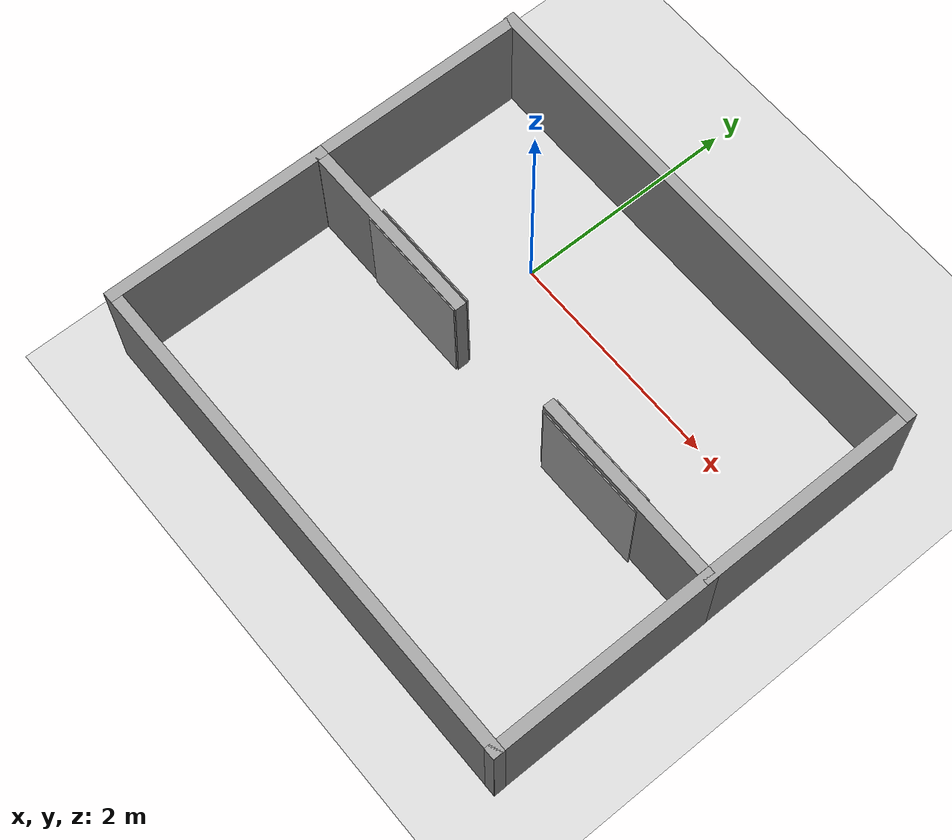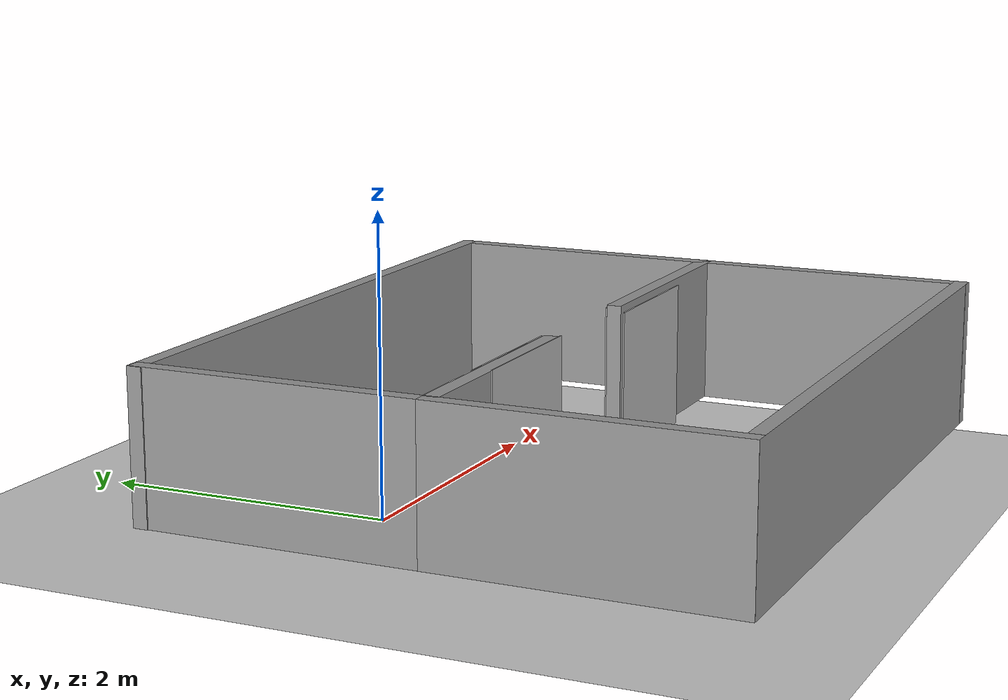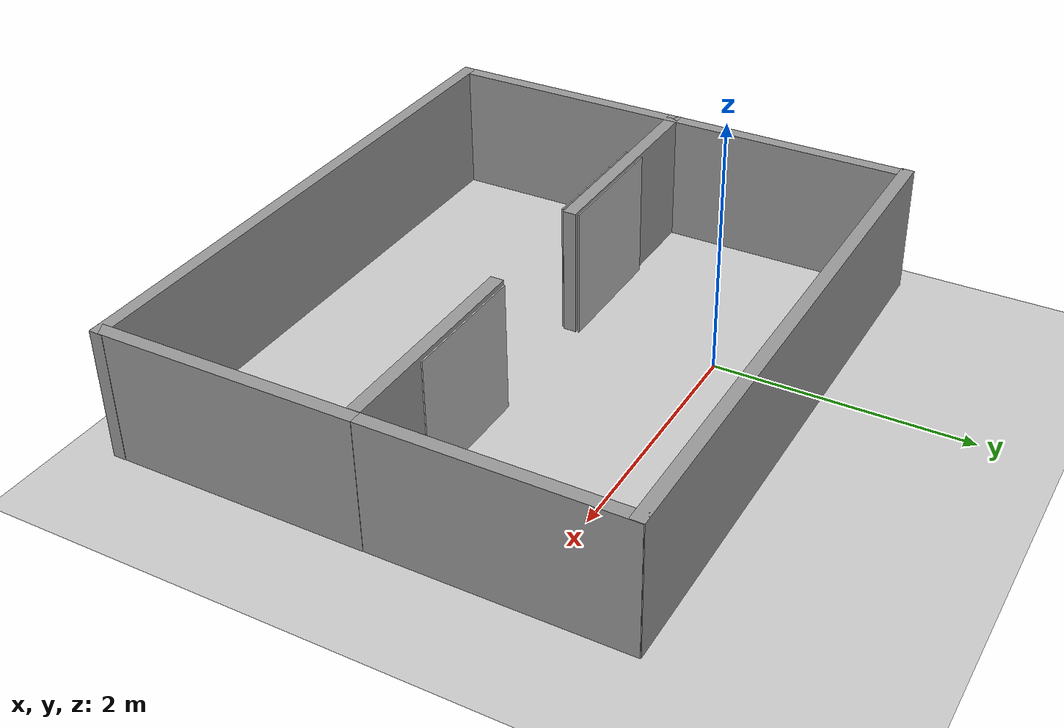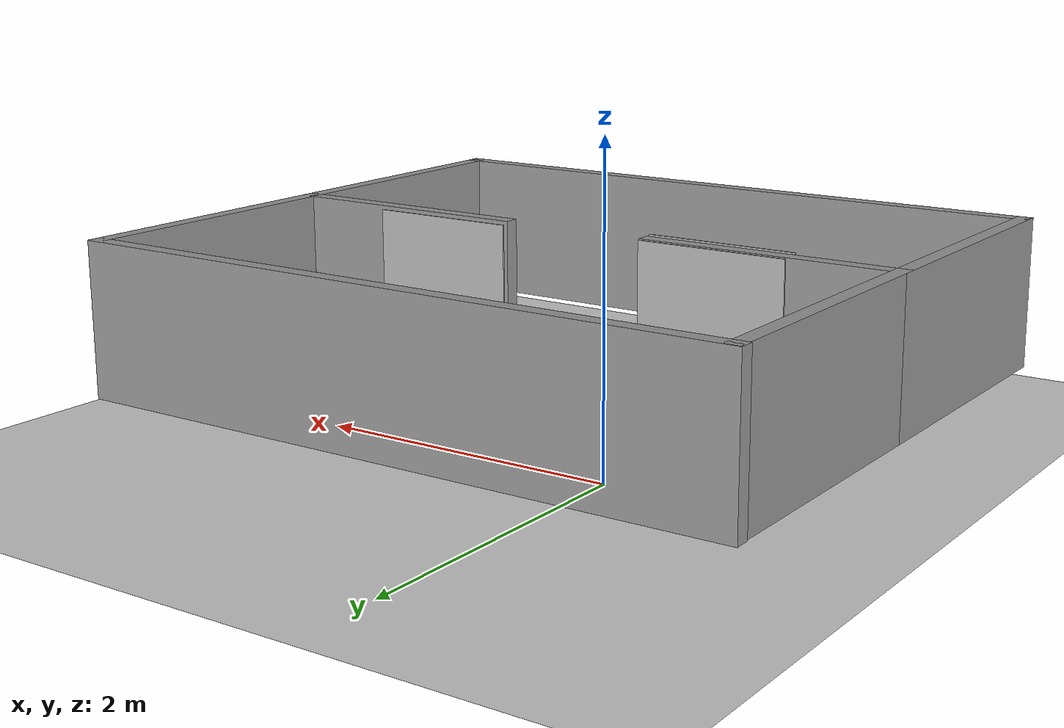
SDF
<sdf version="1.6">
 <world name="default">
  <light name="sun" type="directional">
   <pose>0 0 10 0 -0 0</pose>
   <diffuse>0.8 0.8 0.8 1</diffuse>
   <specular>0.2 0.2 0.2 1</specular>
   <attenuation>
    <range>1000</range>
    <constant>0.9</constant>
    <linear>0.01</linear>
    <quadratic>0.001</quadratic>
   </attenuation>
   <direction>-0.5 0.1 -0.9</direction>
   <spot><inner_angle>0</inner_angle><outer_angle>0</outer_angle><falloff>0</falloff></spot>
  </light>
  <model name="ground_plane">
   <static>1</static>
   <link name="link">
    <collision name="collision">
     <geometry><plane><normal>0 0 1</normal><size>100 100</size></plane></geometry>
     <surface>
      <contact><collide_bitmask>65535</collide_bitmask></contact>
      <friction><ode><mu>100</mu><mu2>50</mu2></ode></friction>
     </surface>
    </collision>
    <visual name="visual">
     <cast_shadows>0</cast_shadows>
     <geometry><plane><normal>0 0 1</normal><size>100 100</size></plane></geometry>
     <material>
      <script><uri>file://media/materials/scripts/gazebo.material</uri><name>Gazebo/Grey</name></script>
     </material>
    </visual>
   </link>
  </model>
  <gravity>0 0 -9.8</gravity>
  <magnetic_field>6e-06 2.3e-05 -4.2e-05</magnetic_field>
  <atmosphere type="adiabatic"/>
  <physics name="default_physics" default="0" type="ode">
   <max_step_size>0.001</max_step_size>
   <real_time_factor>1</real_time_factor>
   <real_time_update_rate>1000</real_time_update_rate>
  </physics>
  <scene><ambient>0.4 0.4 0.4 1</ambient><background>0.7 0.7 0.7 1</background><shadows>1</shadows></scene>
  <audio><device>default</device></audio>
  <spherical_coordinates>
   <surface_model>EARTH_WGS84</surface_model>
   <latitude_deg>0</latitude_deg>
   <longitude_deg>0</longitude_deg>
   <elevation>0</elevation>
   <heading_deg>0</heading_deg>
  </spherical_coordinates>
  <model name="2_room_tagged">
   <link name="link_0_clone_0">
    <inertial>
     <mass>1</mass>
     <inertia>
      <ixx>0.166667</ixx>
      <ixy>0</ixy>
      <ixz>0</ixz>
      <iyy>0.166667</iyy>
      <iyz>0</iyz>
      <izz>0.166667</izz>
     </inertia>
    </inertial>
    <pose>2.941 -1.80696 0.726516 0 -0 0</pose>
    <visual name="visual">
     <geometry><box><size>0.1 2 1</size></box></geometry>
     <material>
      <lighting>1</lighting>
      <script><uri>file://media/materials/scripts/gazebo.material</uri><name>Gazebo/Grey</name></script>
      <shader type="pixel"><normal_map>__default__</normal_map></shader>
      <ambient>0.3 0.3 0.3 1</ambient>
      <diffuse>0.7 0.7 0.7 1</diffuse>
      <specular>0.01 0.01 0.01 1</specular>
      <emissive>0 0 0 1</emissive>
     </material>
    </visual>
    <collision name="collision">
     <geometry><box><size>0.1 2 1</size></box></geometry>
     <surface>
      <friction>
       <ode><mu>1</mu><mu2>1</mu2><fdir1>0 0 0</fdir1><slip1>0</slip1><slip2>0</slip2></ode>
       <torsional>
        <coefficient>1</coefficient>
        <patch_radius>0</patch_radius>
        <surface_radius>0</surface_radius>
        <use_patch_radius>1</use_patch_radius>
        <ode><slip>0</slip></ode>
       </torsional>
      </friction>
      <bounce><restitution_coefficient>0</restitution_coefficient><threshold>1e+06</threshold></bounce>
      <contact>
       <collide_without_contact>0</collide_without_contact>
       <collide_without_contact_bitmask>1</collide_without_contact_bitmask>
       <collide_bitmask>1</collide_bitmask>
       <ode>
        <soft_cfm>0</soft_cfm>
        <soft_erp>0.2</soft_erp>
        <kp>1e+13</kp>
        <kd>1</kd>
        <max_vel>0.01</max_vel>
        <min_depth>0</min_depth>
       </ode>
       <bullet>
        <split_impulse>1</split_impulse>
        <split_impulse_penetration_threshold>-0.01</split_impulse_penetration_threshold>
        <soft_cfm>0</soft_cfm>
        <soft_erp>0.2</soft_erp>
        <kp>1e+13</kp>
        <kd>1</kd>
       </bullet>
      </contact>
     </surface>
    </collision>
   </link>
   <link name="link_0_clone_0_clone">
    <inertial>
     <mass>1</mass>
     <inertia>
      <ixx>0.166667</ixx>
      <ixy>0</ixy>
      <ixz>0</ixz>
      <iyy>0.166667</iyy>
      <iyz>0</iyz>
      <izz>0.166667</izz>
     </inertia>
    </inertial>
    <pose>2.94115 0.091646 0.726516 0 -0 0</pose>
    <visual name="visual">
     <geometry><box><size>0.1 2 1</size></box></geometry>
     <material>
      <lighting>1</lighting>
      <script><uri>file://media/materials/scripts/gazebo.material</uri><name>Gazebo/Grey</name></script>
      <shader type="pixel"><normal_map>__default__</normal_map></shader>
      <ambient>0.3 0.3 0.3 1</ambient>
      <diffuse>0.7 0.7 0.7 1</diffuse>
      <specular>0.01 0.01 0.01 1</specular>
      <emissive>0 0 0 1</emissive>
     </material>
    </visual>
    <collision name="collision">
     <geometry><box><size>0.1 2 1</size></box></geometry>
     <surface>
      <friction>
       <ode><mu>1</mu><mu2>1</mu2><fdir1>0 0 0</fdir1><slip1>0</slip1><slip2>0</slip2></ode>
       <torsional>
        <coefficient>1</coefficient>
        <patch_radius>0</patch_radius>
        <surface_radius>0</surface_radius>
        <use_patch_radius>1</use_patch_radius>
        <ode><slip>0</slip></ode>
       </torsional>
      </friction>
      <bounce><restitution_coefficient>0</restitution_coefficient><threshold>1e+06</threshold></bounce>
      <contact>
       <collide_without_contact>0</collide_without_contact>
       <collide_without_contact_bitmask>1</collide_without_contact_bitmask>
       <collide_bitmask>1</collide_bitmask>
       <ode>
        <soft_cfm>0</soft_cfm>
        <soft_erp>0.2</soft_erp>
        <kp>1e+13</kp>
        <kd>1</kd>
        <max_vel>0.01</max_vel>
        <min_depth>0</min_depth>
       </ode>
       <bullet>
        <split_impulse>1</split_impulse>
        <split_impulse_penetration_threshold>-0.01</split_impulse_penetration_threshold>
        <soft_cfm>0</soft_cfm>
        <soft_erp>0.2</soft_erp>
        <kp>1e+13</kp>
        <kd>1</kd>
       </bullet>
      </contact>
     </surface>
    </collision>
   </link>
   <link name="link_0_clone_0_clone_1_clone">
    <inertial>
     <mass>1</mass>
     <inertia>
      <ixx>0.166667</ixx>
      <ixy>0</ixy>
      <ixz>0</ixz>
      <iyy>0.166667</iyy>
      <iyz>0</iyz>
      <izz>0.166667</izz>
     </inertia>
    </inertial>
    <pose>3.76893 -0.857187 0.726516 0 0 -1.5708</pose>
    <visual name="visual">
     <geometry><box><size>0.1 1.75 1</size></box></geometry>
     <material>
      <lighting>1</lighting>
      <script><uri>file://media/materials/scripts/gazebo.material</uri><name>Gazebo/Grey</name></script>
      <shader type="pixel"><normal_map>__default__</normal_map></shader>
      <ambient>0.3 0.3 0.3 1</ambient>
      <diffuse>0.7 0.7 0.7 1</diffuse>
      <specular>0.01 0.01 0.01 1</specular>
      <emissive>0 0 0 1</emissive>
     </material>
    </visual>
    <collision name="collision">
     <geometry><box><size>0.1 1.75 1</size></box></geometry>
     <surface>
      <friction>
       <ode><mu>1</mu><mu2>1</mu2><fdir1>0 0 0</fdir1><slip1>0</slip1><slip2>0</slip2></ode>
       <torsional>
        <coefficient>1</coefficient>
        <patch_radius>0</patch_radius>
        <surface_radius>0</surface_radius>
        <use_patch_radius>1</use_patch_radius>
        <ode><slip>0</slip></ode>
       </torsional>
      </friction>
      <bounce><restitution_coefficient>0</restitution_coefficient><threshold>1e+06</threshold></bounce>
      <contact>
       <collide_without_contact>0</collide_without_contact>
       <collide_without_contact_bitmask>1</collide_without_contact_bitmask>
       <collide_bitmask>1</collide_bitmask>
       <ode>
        <soft_cfm>0</soft_cfm>
        <soft_erp>0.2</soft_erp>
        <kp>1e+13</kp>
        <kd>1</kd>
        <max_vel>0.01</max_vel>
        <min_depth>0</min_depth>
       </ode>
       <bullet>
        <split_impulse>1</split_impulse>
        <split_impulse_penetration_threshold>-0.01</split_impulse_penetration_threshold>
        <soft_cfm>0</soft_cfm>
        <soft_erp>0.2</soft_erp>
        <kp>1e+13</kp>
        <kd>1</kd>
       </bullet>
      </contact>
     </surface>
    </collision>
   </link>
   <link name="link_0_clone_0_clone_1_clone_clone">
    <inertial>
     <mass>1</mass>
     <inertia>
      <ixx>0.166667</ixx>
      <ixy>0</ixy>
      <ixz>0</ixz>
      <iyy>0.166667</iyy>
      <iyz>0</iyz>
      <izz>0.166667</izz>
     </inertia>
    </inertial>
    <pose>5.14109 -2.75738 0.726516 0 0 -1.5708</pose>
    <visual name="visual">
     <geometry><box><size>0.1 4.5 1</size></box></geometry>
     <material>
      <lighting>1</lighting>
      <script><uri>file://media/materials/scripts/gazebo.material</uri><name>Gazebo/Grey</name></script>
      <shader type="pixel"><normal_map>__default__</normal_map></shader>
      <ambient>0.3 0.3 0.3 1</ambient>
      <diffuse>0.7 0.7 0.7 1</diffuse>
      <specular>0.01 0.01 0.01 1</specular>
      <emissive>0 0 0 1</emissive>
     </material>
    </visual>
    <collision name="collision">
     <geometry><box><size>0.1 4.5 1</size></box></geometry>
     <surface>
      <friction>
       <ode><mu>1</mu><mu2>1</mu2><fdir1>0 0 0</fdir1><slip1>0</slip1><slip2>0</slip2></ode>
       <torsional>
        <coefficient>1</coefficient>
        <patch_radius>0</patch_radius>
        <surface_radius>0</surface_radius>
        <use_patch_radius>1</use_patch_radius>
        <ode><slip>0</slip></ode>
       </torsional>
      </friction>
      <bounce><restitution_coefficient>0</restitution_coefficient><threshold>1e+06</threshold></bounce>
      <contact>
       <collide_without_contact>0</collide_without_contact>
       <collide_without_contact_bitmask>1</collide_without_contact_bitmask>
       <collide_bitmask>1</collide_bitmask>
       <ode>
        <soft_cfm>0</soft_cfm>
        <soft_erp>0.2</soft_erp>
        <kp>1e+13</kp>
        <kd>1</kd>
        <max_vel>0.01</max_vel>
        <min_depth>0</min_depth>
       </ode>
       <bullet>
        <split_impulse>1</split_impulse>
        <split_impulse_penetration_threshold>-0.01</split_impulse_penetration_threshold>
        <soft_cfm>0</soft_cfm>
        <soft_erp>0.2</soft_erp>
        <kp>1e+13</kp>
        <kd>1</kd>
       </bullet>
      </contact>
     </surface>
    </collision>
   </link>
   <link name="link_0_clone_0_clone_1_clone_clone_clone">
    <inertial>
     <mass>1</mass>
     <inertia>
      <ixx>0.166667</ixx>
      <ixy>0</ixy>
      <ixz>0</ixz>
      <iyy>0.166667</iyy>
      <iyz>0</iyz>
      <izz>0.166667</izz>
     </inertia>
    </inertial>
    <pose>5.13286 1.04959 0.726516 0 0 -1.5708</pose>
    <visual name="visual">
     <geometry><box><size>0.1 4.5 1</size></box></geometry>
     <material>
      <lighting>1</lighting>
      <script><uri>file://media/materials/scripts/gazebo.material</uri><name>Gazebo/Grey</name></script>
      <shader type="pixel"><normal_map>__default__</normal_map></shader>
      <ambient>0.3 0.3 0.3 1</ambient>
      <diffuse>0.7 0.7 0.7 1</diffuse>
      <specular>0.01 0.01 0.01 1</specular>
      <emissive>0 0 0 1</emissive>
     </material>
    </visual>
    <collision name="collision">
     <geometry><box><size>0.1 4.5 1</size></box></geometry>
     <surface>
      <friction>
       <ode><mu>1</mu><mu2>1</mu2><fdir1>0 0 0</fdir1><slip1>0</slip1><slip2>0</slip2></ode>
       <torsional>
        <coefficient>1</coefficient>
        <patch_radius>0</patch_radius>
        <surface_radius>0</surface_radius>
        <use_patch_radius>1</use_patch_radius>
        <ode><slip>0</slip></ode>
       </torsional>
      </friction>
      <bounce><restitution_coefficient>0</restitution_coefficient><threshold>1e+06</threshold></bounce>
      <contact>
       <collide_without_contact>0</collide_without_contact>
       <collide_without_contact_bitmask>1</collide_without_contact_bitmask>
       <collide_bitmask>1</collide_bitmask>
       <ode>
        <soft_cfm>0</soft_cfm>
        <soft_erp>0.2</soft_erp>
        <kp>1e+13</kp>
        <kd>1</kd>
        <max_vel>0.01</max_vel>
        <min_depth>0</min_depth>
       </ode>
       <bullet>
        <split_impulse>1</split_impulse>
        <split_impulse_penetration_threshold>-0.01</split_impulse_penetration_threshold>
        <soft_cfm>0</soft_cfm>
        <soft_erp>0.2</soft_erp>
        <kp>1e+13</kp>
        <kd>1</kd>
       </bullet>
      </contact>
     </surface>
    </collision>
   </link>
   <link name="link_0_clone_0_clone_clone">
    <inertial>
     <mass>1</mass>
     <inertia>
      <ixx>0.166667</ixx>
      <ixy>0</ixy>
      <ixz>0</ixz>
      <iyy>0.166667</iyy>
      <iyz>0</iyz>
      <izz>0.166667</izz>
     </inertia>
    </inertial>
    <pose>7.33895 -1.80838 0.726516 0 -0 0</pose>
    <visual name="visual">
     <geometry><box><size>0.1 2 1</size></box></geometry>
     <material>
      <lighting>1</lighting>
      <script><uri>file://media/materials/scripts/gazebo.material</uri><name>Gazebo/Grey</name></script>
      <shader type="pixel"><normal_map>__default__</normal_map></shader>
      <ambient>0.3 0.3 0.3 1</ambient>
      <diffuse>0.7 0.7 0.7 1</diffuse>
      <specular>0.01 0.01 0.01 1</specular>
      <emissive>0 0 0 1</emissive>
     </material>
    </visual>
    <collision name="collision">
     <geometry><box><size>0.1 2 1</size></box></geometry>
     <surface>
      <friction>
       <ode><mu>1</mu><mu2>1</mu2><fdir1>0 0 0</fdir1><slip1>0</slip1><slip2>0</slip2></ode>
       <torsional>
        <coefficient>1</coefficient>
        <patch_radius>0</patch_radius>
        <surface_radius>0</surface_radius>
        <use_patch_radius>1</use_patch_radius>
        <ode><slip>0</slip></ode>
       </torsional>
      </friction>
      <bounce><restitution_coefficient>0</restitution_coefficient><threshold>1e+06</threshold></bounce>
      <contact>
       <collide_without_contact>0</collide_without_contact>
       <collide_without_contact_bitmask>1</collide_without_contact_bitmask>
       <collide_bitmask>1</collide_bitmask>
       <ode>
        <soft_cfm>0</soft_cfm>
        <soft_erp>0.2</soft_erp>
        <kp>1e+13</kp>
        <kd>1</kd>
        <max_vel>0.01</max_vel>
        <min_depth>0</min_depth>
       </ode>
       <bullet>
        <split_impulse>1</split_impulse>
        <split_impulse_penetration_threshold>-0.01</split_impulse_penetration_threshold>
        <soft_cfm>0</soft_cfm>
        <soft_erp>0.2</soft_erp>
        <kp>1e+13</kp>
        <kd>1</kd>
       </bullet>
      </contact>
     </surface>
    </collision>
   </link>
   <link name="link_0_clone_0_clone_clone_clone">
    <inertial>
     <mass>1</mass>
     <inertia>
      <ixx>0.166667</ixx>
      <ixy>0</ixy>
      <ixz>0</ixz>
      <iyy>0.166667</iyy>
      <iyz>0</iyz>
      <izz>0.166667</izz>
     </inertia>
    </inertial>
    <pose>7.33662 0.093628 0.726516 0 -0 0</pose>
    <visual name="visual">
     <geometry><box><size>0.1 2 1</size></box></geometry>
     <material>
      <lighting>1</lighting>
      <script><uri>file://media/materials/scripts/gazebo.material</uri><name>Gazebo/Grey</name></script>
      <shader type="pixel"><normal_map>__default__</normal_map></shader>
      <ambient>0.3 0.3 0.3 1</ambient>
      <diffuse>0.7 0.7 0.7 1</diffuse>
      <specular>0.01 0.01 0.01 1</specular>
      <emissive>0 0 0 1</emissive>
     </material>
    </visual>
    <collision name="collision">
     <geometry><box><size>0.1 2 1</size></box></geometry>
     <surface>
      <friction>
       <ode><mu>1</mu><mu2>1</mu2><fdir1>0 0 0</fdir1><slip1>0</slip1><slip2>0</slip2></ode>
       <torsional>
        <coefficient>1</coefficient>
        <patch_radius>0</patch_radius>
        <surface_radius>0</surface_radius>
        <use_patch_radius>1</use_patch_radius>
        <ode><slip>0</slip></ode>
       </torsional>
      </friction>
      <bounce><restitution_coefficient>0</restitution_coefficient><threshold>1e+06</threshold></bounce>
      <contact>
       <collide_without_contact>0</collide_without_contact>
       <collide_without_contact_bitmask>1</collide_without_contact_bitmask>
       <collide_bitmask>1</collide_bitmask>
       <ode>
        <soft_cfm>0</soft_cfm>
        <soft_erp>0.2</soft_erp>
        <kp>1e+13</kp>
        <kd>1</kd>
        <max_vel>0.01</max_vel>
        <min_depth>0</min_depth>
       </ode>
       <bullet>
        <split_impulse>1</split_impulse>
        <split_impulse_penetration_threshold>-0.01</split_impulse_penetration_threshold>
        <soft_cfm>0</soft_cfm>
        <soft_erp>0.2</soft_erp>
        <kp>1e+13</kp>
        <kd>1</kd>
       </bullet>
      </contact>
     </surface>
    </collision>
   </link>
   <link name="link_0_clone_0_clone_clone_clone_0">
    <inertial>
     <mass>1</mass>
     <inertia>
      <ixx>0.166667</ixx>
      <ixy>0</ixy>
      <ixz>0</ixz>
      <iyy>0.166667</iyy>
      <iyz>0</iyz>
      <izz>0.166667</izz>
     </inertia>
    </inertial>
    <pose>6.50976 -0.859788 0.726516 0 0 -1.5708</pose>
    <visual name="visual">
     <geometry><box><size>0.1 1.75 1</size></box></geometry>
     <material>
      <lighting>1</lighting>
      <script><uri>file://media/materials/scripts/gazebo.material</uri><name>Gazebo/Grey</name></script>
      <shader type="pixel"><normal_map>__default__</normal_map></shader>
      <ambient>0.3 0.3 0.3 1</ambient>
      <diffuse>0.7 0.7 0.7 1</diffuse>
      <specular>0.01 0.01 0.01 1</specular>
      <emissive>0 0 0 1</emissive>
     </material>
    </visual>
    <collision name="collision">
     <geometry><box><size>0.1 1.75 1</size></box></geometry>
     <surface>
      <friction>
       <ode><mu>1</mu><mu2>1</mu2><fdir1>0 0 0</fdir1><slip1>0</slip1><slip2>0</slip2></ode>
       <torsional>
        <coefficient>1</coefficient>
        <patch_radius>0</patch_radius>
        <surface_radius>0</surface_radius>
        <use_patch_radius>1</use_patch_radius>
        <ode><slip>0</slip></ode>
       </torsional>
      </friction>
      <bounce><restitution_coefficient>0</restitution_coefficient><threshold>1e+06</threshold></bounce>
      <contact>
       <collide_without_contact>0</collide_without_contact>
       <collide_without_contact_bitmask>1</collide_without_contact_bitmask>
       <collide_bitmask>1</collide_bitmask>
       <ode>
        <soft_cfm>0</soft_cfm>
        <soft_erp>0.2</soft_erp>
        <kp>1e+13</kp>
        <kd>1</kd>
        <max_vel>0.01</max_vel>
        <min_depth>0</min_depth>
       </ode>
       <bullet>
        <split_impulse>1</split_impulse>
        <split_impulse_penetration_threshold>-0.01</split_impulse_penetration_threshold>
        <soft_cfm>0</soft_cfm>
        <soft_erp>0.2</soft_erp>
        <kp>1e+13</kp>
        <kd>1</kd>
       </bullet>
      </contact>
     </surface>
    </collision>
   </link>
   <model name="Apriltag36_11_00000">
    <link name="main">
     <visual name="main_Visual">
      <geometry><box><size>1 1 0.01</size></box></geometry>
      <material>
       <script>
        <uri>model://Apriltag36_11_00000/materials/scripts</uri>
        <uri>model://Apriltag36_11_00000/materials/textures</uri>
        <name>Apriltag36_11_00000</name>
       </script>
      </material>
     </visual>
    </link>
    <static>1</static>
    <pose>4.13627 -0.918037 0.736809 1.5708 -0 0</pose>
   </model>
   <model name="Apriltag36_11_00001">
    <link name="main">
     <visual name="main_Visual">
      <geometry><box><size>1 1 0.01</size></box></geometry>
      <material>
       <script>
        <uri>model://Apriltag36_11_00001/materials/scripts</uri>
        <uri>model://Apriltag36_11_00001/materials/textures</uri>
        <name>Apriltag36_11_00001</name>
       </script>
      </material>
     </visual>
    </link>
    <static>1</static>
    <pose>6.16095 -0.919793 0.678716 1.5708 -0 0</pose>
   </model>
   <model name="Apriltag36_11_00002">
    <link name="main">
     <visual name="main_Visual">
      <geometry><box><size>1 1 0.01</size></box></geometry>
      <material>
       <script>
        <uri>model://Apriltag36_11_00002/materials/scripts</uri>
        <uri>model://Apriltag36_11_00002/materials/textures</uri>
        <name>Apriltag36_11_00002</name>
       </script>
      </material>
     </visual>
    </link>
    <static>1</static>
    <pose>6.15525 -0.796251 0.702125 -1.5708 0 0</pose>
   </model>
   <model name="Apriltag36_11_00003">
    <link name="main">
     <visual name="main_Visual">
      <geometry><box><size>1 1 0.01</size></box></geometry>
      <material>
       <script>
        <uri>model://Apriltag36_11_00003/materials/scripts</uri>
        <uri>model://Apriltag36_11_00003/materials/textures</uri>
        <name>Apriltag36_11_00003</name>
       </script>
      </material>
     </visual>
    </link>
    <static>1</static>
    <pose>4.13469 -0.787642 0.722 -1.5708 0 0</pose>
   </model>
   <joint name="main_JOINT_5" type="fixed">
    <parent>Apriltag36_11_00000::main</parent>
    <child>link_0_clone_0_clone_1_clone</child>
    <physics>
     <ode><limit><cfm>0</cfm><erp>0.2</erp></limit><suspension><cfm>0</cfm><erp>0.2</erp></suspension></ode>
    </physics>
   </joint>
   <joint name="main_JOINT_4" type="fixed">
    <parent>Apriltag36_11_00001::main</parent>
    <child>link_0_clone_0_clone_clone_clone_0</child>
    <physics>
     <ode><limit><cfm>0</cfm><erp>0.2</erp></limit><suspension><cfm>0</cfm><erp>0.2</erp></suspension></ode>
    </physics>
   </joint>
   <joint name="link_0_clone_0_JOINT_0" type="fixed">
    <parent>link_0_clone_0</parent>
    <child>link_0_clone_0_clone_1_clone</child>
    <physics>
     <ode><limit><cfm>0</cfm><erp>0.2</erp></limit><suspension><cfm>0</cfm><erp>0.2</erp></suspension></ode>
    </physics>
   </joint>
   <joint name="link_0_clone_0_JOINT_1" type="fixed">
    <parent>link_0_clone_0</parent>
    <child>link_0_clone_0_clone_1_clone</child>
    <physics>
     <ode><limit><cfm>0</cfm><erp>0.2</erp></limit><suspension><cfm>0</cfm><erp>0.2</erp></suspension></ode>
    </physics>
   </joint>
   <joint name="link_0_clone_0_clone_1_clone_JOINT_2" type="fixed">
    <parent>link_0_clone_0_clone_1_clone</parent>
    <child>link_0_clone_0_clone</child>
    <physics>
     <ode><limit><cfm>0</cfm><erp>0.2</erp></limit><suspension><cfm>0</cfm><erp>0.2</erp></suspension></ode>
    </physics>
   </joint>
   <static>1</static>
   <pose>-4.26389 -0.154384 0 0 -0 0</pose>
  </model>
 </world>
</sdf>
